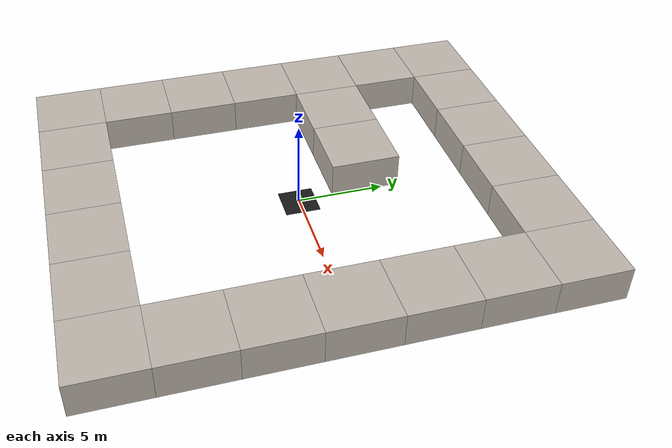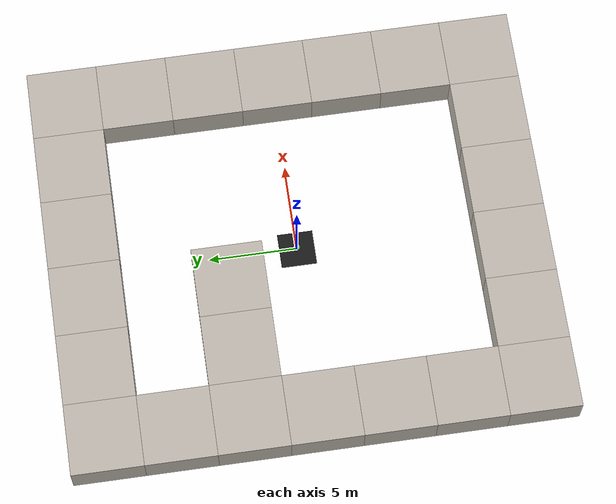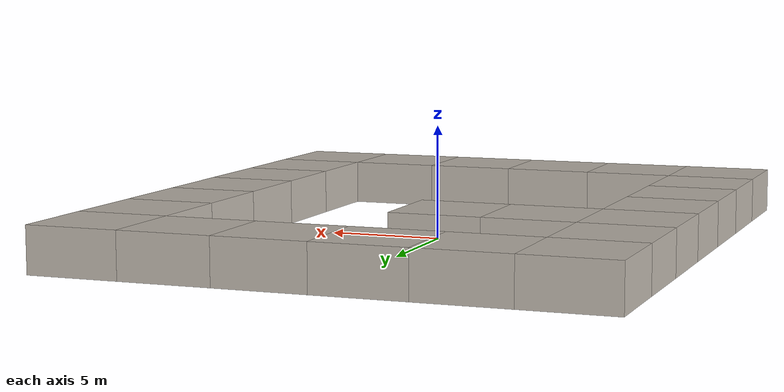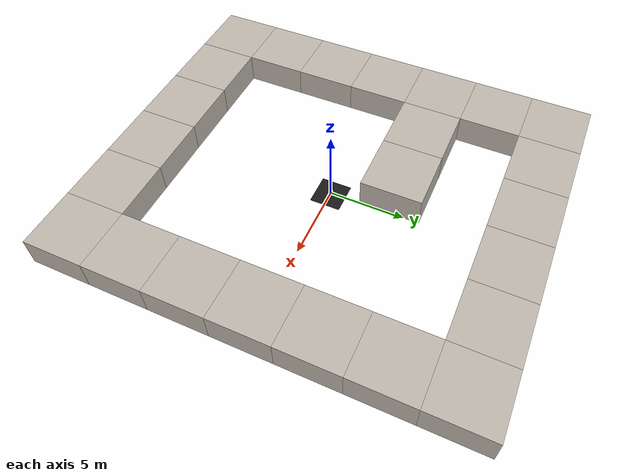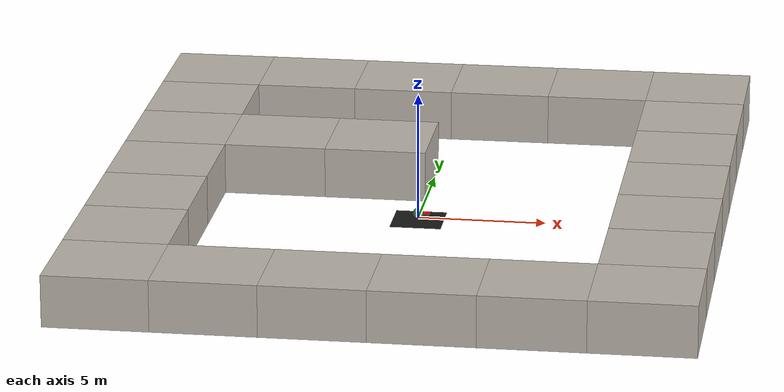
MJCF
<mujoco model="scene">
    <compiler assetdir="/home/aaron/Pseudos/mit/robobees/EyesOfCambrian/cambrian/evolution_envs/three_d/mujoco/models/assets" angle="degree" coordinate="local" inertiafromgeom="true" />
    <option density="1000" integrator="implicitfast" timestep="0.02" viscosity="1.8e-5" />
    <visual>
        <map znear="0.001" zfar="3" />
        <scale frustum="40" />
        <rgba camera="0.6 0.9 0.6 1" />
    </visual>
    <asset>
        <texture type="skybox" builtin="gradient" width="100" height="100" rgb1="0 0 0" rgb2="0 0 0" />
    <material name="particle_mat" emission="1" rgba="0.3 0.6 0.3 1" />

  <material name="particle_direction_mat" emission="1" rgba="0.6 0.3 0.3 1" />

 <texture name="checker_tex_cube" file="checker_texture.png" type="cube" />
        <texture name="checker_tex_2d" file="checker_texture.png" type="2d" />

        <material name="floor_mat" rgba="0.1 0.1 0.1 1.0" shininess="0.0" specular="0.0" texrepeat="0.5 0.5" />
        <material name="target_mat" emission="5" />
        <material name="block_mat" texture="checker_tex_cube" />
    </asset>
    <worldbody><body name="particle_0" pos="0 0 0.2">

   <geom name="particle_geom_0" type="sphere" size="0.2" rgba="0.0 0.0 1.0 0.0" contype="1" friction=".5 .1 .1" density="1000" margin="0.002" condim="1" conaffinity="1" group="2" />

   <site name="particle_site_0" pos="0.0 0.0 0.0" material="particle_mat" size="0.2" />

   <joint name="ball_x_0" type="slide" pos="0 0 0" axis="1 0 0" damping="1" limited="false" />

   <joint name="ball_y_0" type="slide" pos="0 0 0" axis="0 1 0" damping="1" limited="false" />

   <joint name="ball_z_0" type="hinge" pos="0 0 0" axis="0 0 1" damping="1" limited="false" />

   <site name="particle_direction_site_0" group="2" pos="0.3 0.0 0.0" quat="0.5 0.5 0.5 0.5" type="cylinder" material="particle_direction_mat" rgba="1.0 0.0 0.0 1.0" size="0.05 0.15" />

  <camera name="animal_0_eye_0_0" mode="fixed" pos="0.09848077530122082 -0.17057370639048872 0.03472963553338608" quat="-0.16636567534280194 -0.19826689127414623 0.739942111693848 0.6208851530148457" resolution="4 4" focal="0.1 0.1" sensorsize="0.08284271247461901 0.035265396141692995" /><camera name="animal_0_eye_0_1" mode="fixed" pos="0.09848077530122093 0.17057370639048863 0.03472963553338607" quat="-0.6208851530148456 -0.7399421116938482 0.19826689127414635 0.1663656753428021" resolution="4 4" focal="0.1 0.1" sensorsize="0.08284271247461901 0.035265396141692995" /><camera name="animal_0_intensity_sensor" mode="fixed" pos="0.1999990720829932 -4.440873736853886e-17 0.0006092338973741778" quat="-0.49923787679650494 -0.5007609633065638 0.5007609633065638 0.49923787679650505" resolution="1 1" focal="0.1 0.1" sensorsize="0.34641016151377535 0.0174977327051848" /></body>

 <body name="floor">
            <geom name="floor" type="plane" pos="0 0 -0.05" size="1 1 1" material="floor_mat" condim="1" group="1" />
        </body>
        <site name="target" type="sphere" pos="0 0 1" rgba="1 1 1 1" material="target_mat" group="1" />

        <light name="target_light" pos="0 0 1" dir="0 0 -1" cutoff="180" exponent="0.1" ambient="1 1 1" diffuse="1 1 1" specular="1 1 1" castshadow="false" />
    <geom name="block_0_0" pos="-10.0 12.0 1.0" size="2.0 2.0 1.0" type="box" gap="0.05" margin="0.1" material="block_mat" contype="1" conaffinity="1" group="1" /><geom name="block_0_1" pos="-6.0 12.0 1.0" size="2.0 2.0 1.0" type="box" gap="0.05" margin="0.1" material="block_mat" contype="1" conaffinity="1" group="1" /><geom name="block_0_2" pos="-2.0 12.0 1.0" size="2.0 2.0 1.0" type="box" gap="0.05" margin="0.1" material="block_mat" contype="1" conaffinity="1" group="1" /><geom name="block_0_3" pos="2.0 12.0 1.0" size="2.0 2.0 1.0" type="box" gap="0.05" margin="0.1" material="block_mat" contype="1" conaffinity="1" group="1" /><geom name="block_0_4" pos="6.0 12.0 1.0" size="2.0 2.0 1.0" type="box" gap="0.05" margin="0.1" material="block_mat" contype="1" conaffinity="1" group="1" /><geom name="block_0_5" pos="10.0 12.0 1.0" size="2.0 2.0 1.0" type="box" gap="0.05" margin="0.1" material="block_mat" contype="1" conaffinity="1" group="1" /><geom name="block_1_0" pos="-10.0 8.0 1.0" size="2.0 2.0 1.0" type="box" gap="0.05" margin="0.1" material="block_mat" contype="1" conaffinity="1" group="1" /><geom name="block_1_5" pos="10.0 8.0 1.0" size="2.0 2.0 1.0" type="box" gap="0.05" margin="0.1" material="block_mat" contype="1" conaffinity="1" group="1" /><geom name="block_2_0" pos="-10.0 4.0 1.0" size="2.0 2.0 1.0" type="box" gap="0.05" margin="0.1" material="block_mat" contype="1" conaffinity="1" group="1" /><geom name="block_2_1" pos="-6.0 4.0 1.0" size="2.0 2.0 1.0" type="box" gap="0.05" margin="0.1" material="block_mat" contype="1" conaffinity="1" group="1" /><geom name="block_2_2" pos="-2.0 4.0 1.0" size="2.0 2.0 1.0" type="box" gap="0.05" margin="0.1" material="block_mat" contype="1" conaffinity="1" group="1" /><geom name="block_2_5" pos="10.0 4.0 1.0" size="2.0 2.0 1.0" type="box" gap="0.05" margin="0.1" material="block_mat" contype="1" conaffinity="1" group="1" /><geom name="block_3_0" pos="-10.0 0.0 1.0" size="2.0 2.0 1.0" type="box" gap="0.05" margin="0.1" material="block_mat" contype="1" conaffinity="1" group="1" /><geom name="block_3_5" pos="10.0 0.0 1.0" size="2.0 2.0 1.0" type="box" gap="0.05" margin="0.1" material="block_mat" contype="1" conaffinity="1" group="1" /><geom name="block_4_0" pos="-10.0 -4.0 1.0" size="2.0 2.0 1.0" type="box" gap="0.05" margin="0.1" material="block_mat" contype="1" conaffinity="1" group="1" /><geom name="block_4_5" pos="10.0 -4.0 1.0" size="2.0 2.0 1.0" type="box" gap="0.05" margin="0.1" material="block_mat" contype="1" conaffinity="1" group="1" /><geom name="block_5_0" pos="-10.0 -8.0 1.0" size="2.0 2.0 1.0" type="box" gap="0.05" margin="0.1" material="block_mat" contype="1" conaffinity="1" group="1" /><geom name="block_5_5" pos="10.0 -8.0 1.0" size="2.0 2.0 1.0" type="box" gap="0.05" margin="0.1" material="block_mat" contype="1" conaffinity="1" group="1" /><geom name="block_6_0" pos="-10.0 -12.0 1.0" size="2.0 2.0 1.0" type="box" gap="0.05" margin="0.1" material="block_mat" contype="1" conaffinity="1" group="1" /><geom name="block_6_1" pos="-6.0 -12.0 1.0" size="2.0 2.0 1.0" type="box" gap="0.05" margin="0.1" material="block_mat" contype="1" conaffinity="1" group="1" /><geom name="block_6_2" pos="-2.0 -12.0 1.0" size="2.0 2.0 1.0" type="box" gap="0.05" margin="0.1" material="block_mat" contype="1" conaffinity="1" group="1" /><geom name="block_6_3" pos="2.0 -12.0 1.0" size="2.0 2.0 1.0" type="box" gap="0.05" margin="0.1" material="block_mat" contype="1" conaffinity="1" group="1" /><geom name="block_6_4" pos="6.0 -12.0 1.0" size="2.0 2.0 1.0" type="box" gap="0.05" margin="0.1" material="block_mat" contype="1" conaffinity="1" group="1" /><geom name="block_6_5" pos="10.0 -12.0 1.0" size="2.0 2.0 1.0" type="box" gap="0.05" margin="0.1" material="block_mat" contype="1" conaffinity="1" group="1" /></worldbody>
<actuator>

  <motor name="motor_x_0" joint="ball_x_0" ctrlrange="-1.0 1.0" ctrllimited="true" gear="100" />

  <motor name="motor_y_0" joint="ball_y_0" ctrlrange="-1.0 1.0" ctrllimited="true" gear="100" />

  <motor name="motor_z_0" joint="ball_z_0" ctrlrange="-1.0 1.0" ctrllimited="true" gear="1" />

 </actuator>
<visual><headlight active="0" /></visual></mujoco>
